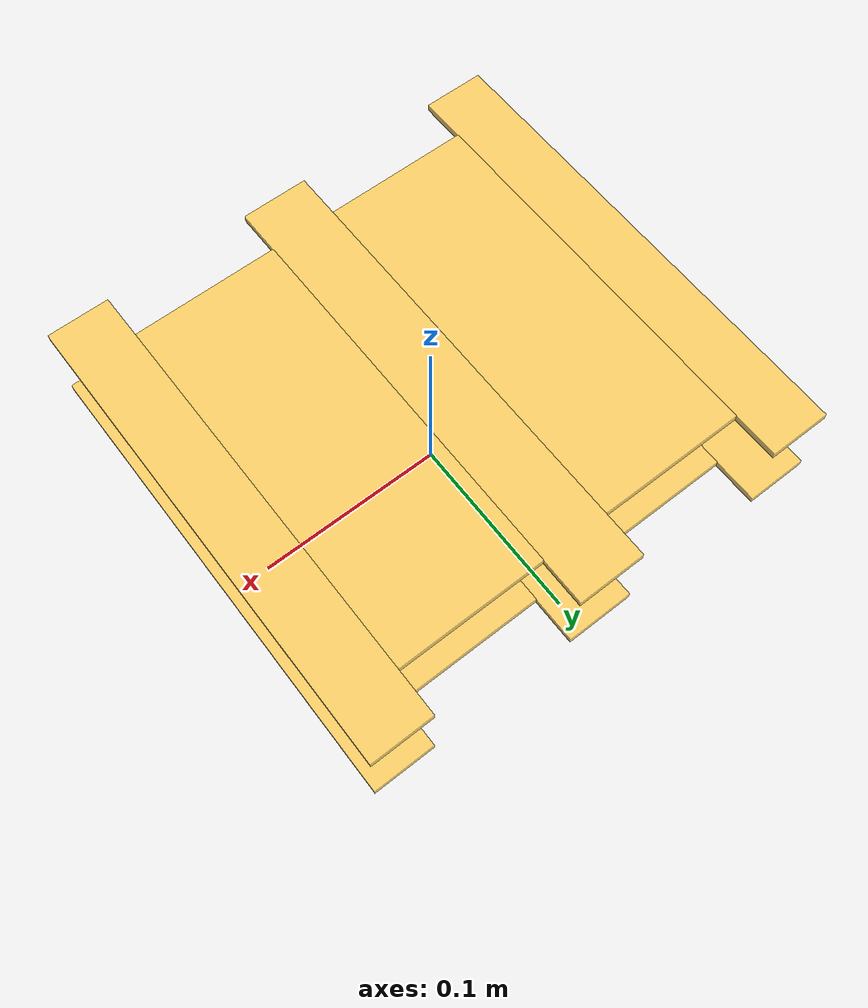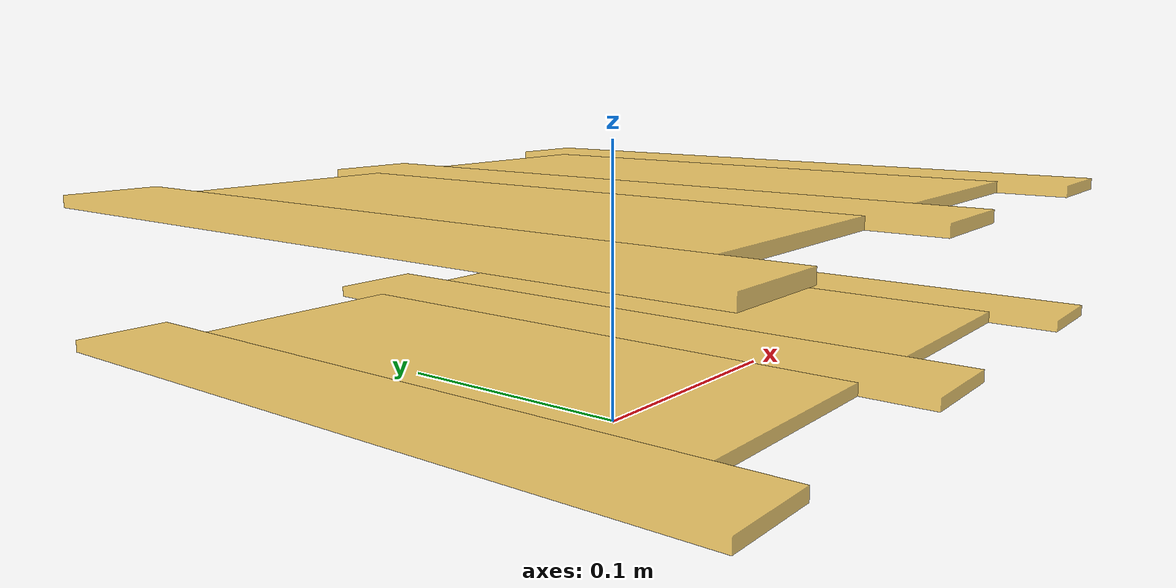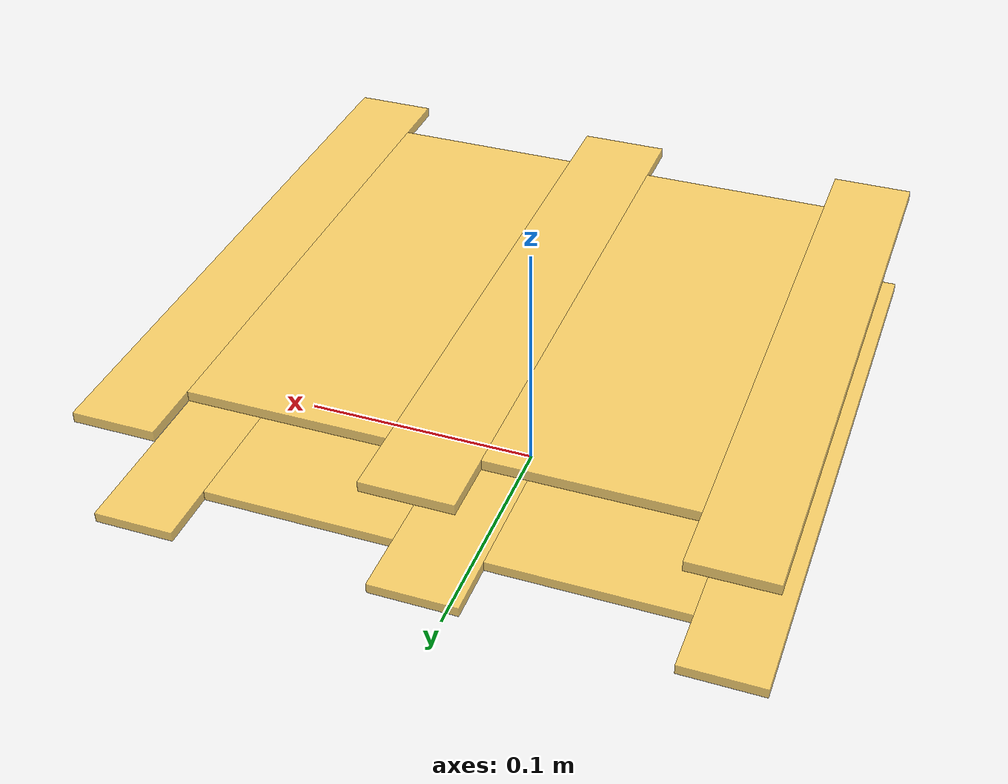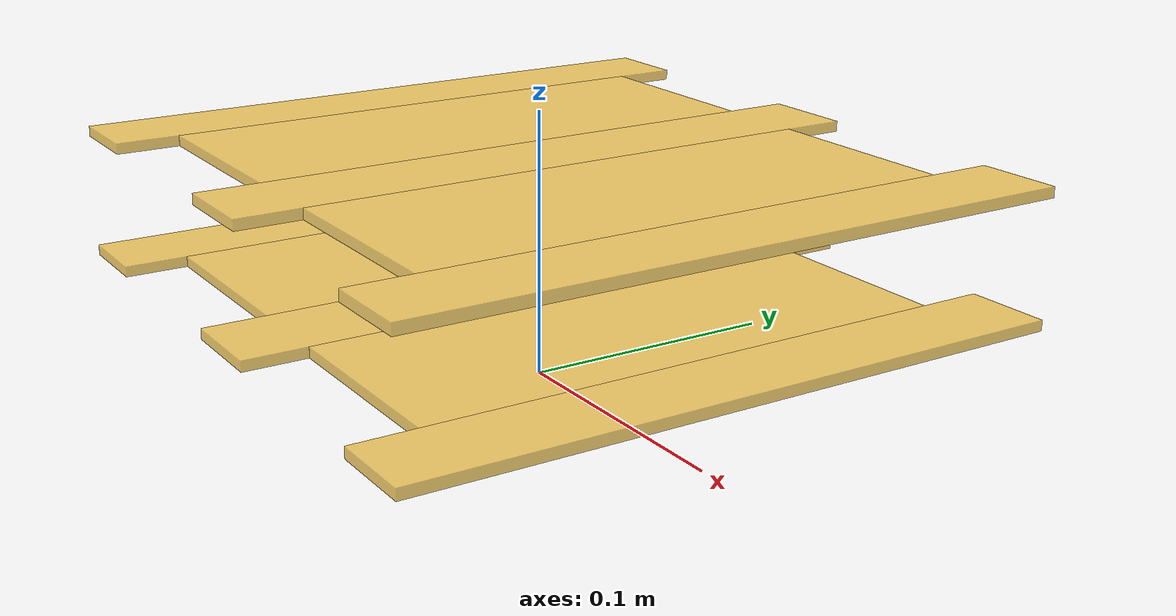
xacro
<?xml version="1.0"?>
<robot xmlns:xacro="http://www.ros.org/wiki/xacro" name="robot">

    <xacro:include filename="inertial_macros.xacro" />

    <material name="NavyBlue">
        <color rgba="0.0 0.0 0.5 1.0" />
    </material>

    <material name="WoodYellow">
        <color rgba="1.0 0.8 0.3 0.8" />
    </material>

    <material name="BlackWheel">
        <color rgba="0.0 0.0 0.0 1.0" />
    </material>

    <material name="Red">
        <color rgba="0.1 0.0 0.0 1.0" />
    </material>

    <material name="White">
        <color rgba="0.9 0.9 0.9 1.0" />
    </material>

    <material name="AbsWhite">
        <color rgba="1 1 1 1.0" />
    </material>

    <material name="Gray">
        <color rgba="0.7 0.7 0.7 1.0" />
    </material>

    <material name="DarkGold">
        <color rgba="0.8 0.6 0.2 1.0" />
    </material>
    <material name="DarkGreen">
        <color rgba="0.0 0.3 0.0 1.0" />
    </material>

    <link name="base_link">

    </link>

    <!-- BASE_FOOTPRINT LINK -->

    <joint name="base_footprint_joint" type="fixed">
        <parent link="base_link" />
        <child link="base_footprint" />
        <origin xyz="0 0 0" rpy="0 0 0" />
    </joint>

    <link name="base_footprint">
    </link>

    <xacro:property name="chassis_total_length" value="0.25" />
    <xacro:property name="chassis_small_length" value="0.032" />
    <xacro:property name="chassis_big_length" value="0.077" />
    <xacro:property name="chassis_small_width" value="0.2" />
    <xacro:property name="chassis_big_width" value="0.248" />
    <xacro:property name="chassis_height" value="0.004" />
    <xacro:property name="chassis_mass" value="0.150" />

    <xacro:property name="wheel_radius" value="0.033" />
    <xacro:property name="wheel_thickness" value="0.026" />
    <xacro:property name="wheel_mass" value="0.05" />
    <xacro:property name="wheel_offset_x" value="0.01" />
    <xacro:property name="wheel_offset_z" value="0.01" />

    <xacro:property name="motor_radius" value="0.0244" />
    <xacro:property name="motor_length" value="0.059" />
    <xacro:property name="motor_mass" value="0.096" />
    <xacro:property name="motor_bracket_offset" value="0.01" />
    <xacro:property name="small_cylinder_length" value="0.0435" />

    <!-- |                                    Chassis                                      | -->

    <!-- Chassis Macro !-->
    <xacro:macro name="chassis" params="postfix">
        <link name="chassis_${postfix}">
            <visual>
                <geometry>
                    <box size="${chassis_small_length} ${chassis_big_width} ${chassis_height}" />
                </geometry>
                <origin
                    xyz="${(chassis_small_length + 0.0015 + chassis_big_length)} 0 0"
                    rpy="0.0 0.0 0.0" />
                <material name="WoodYellow" />
            </visual>
            <visual>
                <geometry>
                    <box size="${chassis_big_length} ${chassis_small_width} ${chassis_height}" />
                </geometry>
                <origin xyz="${chassis_big_length/2+(chassis_small_length+0.003)/2} 0 0"
                    rpy="0.0 0.0 0.0" />
                <material name="WoodYellow" />
            </visual>
            <visual>
                <geometry>
                    <box
                        size="${chassis_small_length + 0.003} ${chassis_big_width} ${chassis_height}" />
                </geometry>
                <origin xyz="0 0 0" rpy="0.0 0.0 0.0" />
                <material name="WoodYellow" />
            </visual>
            <visual>
                <geometry>
                    <box size="${chassis_big_length} ${chassis_small_width} ${chassis_height}" />
                </geometry>
                <origin xyz="-${chassis_big_length/2+(chassis_small_length+0.003)/2} 0 0"
                    rpy="0.0 0.0 0.0" />
                <material name="WoodYellow" />
            </visual>
            <visual>
                <geometry>
                    <box size="${chassis_small_length} ${chassis_big_width} ${chassis_height}" />
                </geometry>
                <origin
                    xyz="-${(chassis_small_length + 0.0015 + chassis_big_length)} 0 0"
                    rpy="0.0 0.0 0.0" />
                <material name="WoodYellow" />
            </visual>

            <collision>
                <geometry>
                    <box size="${chassis_small_length} ${chassis_big_width} ${chassis_height}" />
                </geometry>
                <origin
                    xyz="${(chassis_small_length + 0.0015 + chassis_big_length)} 0 0"
                    rpy="0.0 0.0 0.0" />
            </collision>
            <collision>
                <geometry>
                    <box size="${chassis_big_length} ${chassis_small_width} ${chassis_height}" />
                </geometry>
                <origin xyz="${chassis_big_length/2+(chassis_small_length+0.003)/2} 0 0"
                    rpy="0.0 0.0 0.0" />
            </collision>
            <collision>
                <geometry>
                    <box
                        size="${chassis_small_length + 0.003} ${chassis_big_width} ${chassis_height}" />
                </geometry>
                <origin xyz="0 0 0" rpy="0.0 0.0 0.0" />
            </collision>
            <collision>
                <geometry>
                    <box size="${chassis_big_length} ${chassis_small_width} ${chassis_height}" />
                </geometry>
                <origin xyz="-${chassis_big_length/2+(chassis_small_length+0.003)/2} 0 0"
                    rpy="0.0 0.0 0.0" />
            </collision>
            <collision>
                <geometry>
                    <box size="${chassis_small_length} ${chassis_big_width} ${chassis_height}" />
                </geometry>
                <origin
                    xyz="-${(chassis_small_length + 0.0015 + chassis_big_length)} 0 0"
                    rpy="0.0 0.0 0.0" />
            </collision>

            <xacro:inertial_box mass="${chassis_mass}" x="${chassis_total_length}"
                y="${chassis_big_width}"
                z="${chassis_height}">
                <origin
                    xyz="0 0 ${chassis_height}"
                    rpy="0 0 0" />
            </xacro:inertial_box>
        </link>
    </xacro:macro>

    <!-- Chassis bottom !-->
    <xacro:chassis postfix="bottom" />
    <!-- Chassis mid !-->
    <xacro:chassis postfix="mid" />

    <!-- Chassis bottom !-->
    <joint name="chassis_bottom_joint"
        type="fixed">
        <parent link="base_link" />
        <child link="chassis_bottom" />
        <origin xyz="0 0 ${wheel_radius - wheel_radius + motor_radius + motor_bracket_offset}" />
    </joint>

    <!-- Chassis mid !-->
    <joint
        name="chassis_mid_joint" type="fixed">
        <parent link="chassis_bottom" />
        <child link="chassis_mid" />
        <origin xyz="0.0 0.0 ${small_cylinder_length + chassis_height}" />
    </joint>

</robot>
